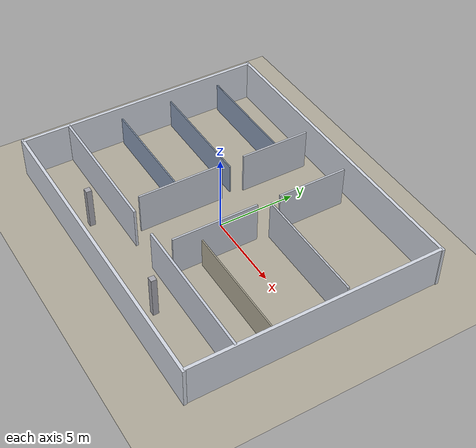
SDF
<sdf version="1.8">
 <world name="office">
  <physics name="1ms" type="ignored">
   <max_step_size>0.001</max_step_size>
   <real_time_factor>1.0</real_time_factor>
  </physics>
  <plugin filename="gz-sim-physics-system" name="gz::sim::systems::Physics"/>
  <plugin filename="gz-sim-user-commands-system" name="gz::sim::systems::UserCommands"/>
  <plugin filename="gz-sim-scene-broadcaster-system" name="gz::sim::systems::SceneBroadcaster"/>
  <plugin filename="gz-sim-contact-system" name="gz::sim::systems::Contact"/>
  <plugin filename="gz-sim-sensors-system" name="gz::sim::systems::Sensors">
   <render_engine>ogre2</render_engine>
  </plugin>
  <light type="directional" name="sun">
   <pose>0 0 12 0 0 0</pose>
   <diffuse>0.85 0.85 0.8 1</diffuse>
   <specular>0.25 0.25 0.25 1</specular>
   <direction>-0.35 0.15 -0.9</direction>
  </light>
  <light type="point" name="lobby_light">
   <pose>0 -8 2.8 0 0 0</pose>
   <diffuse>0.9 0.9 0.85 1</diffuse>
   <attenuation>
    <range>12</range>
    <constant>0.4</constant>
    <linear>0.04</linear>
    <quadratic>0.01</quadratic>
   </attenuation>
  </light>
  <light type="point" name="corridor_light">
   <pose>0 0 2.8 0 0 0</pose>
   <diffuse>0.85 0.85 0.9 1</diffuse>
   <attenuation>
    <range>10</range>
    <constant>0.4</constant>
    <linear>0.05</linear>
    <quadratic>0.01</quadratic>
   </attenuation>
  </light>
  <light type="point" name="meet_light">
   <pose>5 4 2.8 0 0 0</pose>
   <diffuse>0.9 0.88 0.8 1</diffuse>
   <attenuation>
    <range>8</range>
    <constant>0.4</constant>
    <linear>0.05</linear>
    <quadratic>0.01</quadratic>
   </attenuation>
  </light>
  <gravity>0 0 -9.8</gravity>
  <magnetic_field>6e-06 2.3e-05 -4.2e-05</magnetic_field>
  <atmosphere type="adiabatic"/>
  <scene>
   <ambient>0.42 0.42 0.45 1</ambient>
   <background>0.7 0.74 0.78 1</background>
   <shadows>true</shadows>
  </scene>
  <model name="ground_plane">
   <static>true</static>
   <link name="link">
    <collision name="collision">
     <geometry><plane><normal>0 0 1</normal><size>60 60</size></plane></geometry>
     <surface><friction><ode><mu>1</mu><mu2>1</mu2></ode></friction></surface>
    </collision>
    <visual name="visual">
     <geometry><plane><normal>0 0 1</normal><size>60 60</size></plane></geometry>
     <material><ambient>0.68 0.66 0.60 1</ambient><diffuse>0.68 0.66 0.60 1</diffuse></material>
    </visual>
   </link>
  </model>
  <model name="outer_s">
   <static>true</static>
   <pose>0 -8 1.35 0 0 0</pose>
   <link name="link">
    <collision name="c"><geometry><box><size>20.3 0.2 2.7</size></box></geometry></collision>
    <visual name="v">
     <geometry><box><size>20.3 0.2 2.7</size></box></geometry>
     <material><ambient>0.82 0.84 0.88 1</ambient><diffuse>0.82 0.84 0.88 1</diffuse></material>
    </visual>
   </link>
  </model>
  <model name="outer_n">
   <static>true</static>
   <pose>0 8 1.35 0 0 0</pose>
   <link name="link">
    <collision name="c"><geometry><box><size>20.3 0.2 2.7</size></box></geometry></collision>
    <visual name="v">
     <geometry><box><size>20.3 0.2 2.7</size></box></geometry>
     <material><ambient>0.82 0.84 0.88 1</ambient><diffuse>0.82 0.84 0.88 1</diffuse></material>
    </visual>
   </link>
  </model>
  <model name="outer_w">
   <static>true</static>
   <pose>-10 0 1.35 0 0 0</pose>
   <link name="link">
    <collision name="c"><geometry><box><size>0.2 16.0 2.7</size></box></geometry></collision>
    <visual name="v">
     <geometry><box><size>0.2 16.0 2.7</size></box></geometry>
     <material><ambient>0.82 0.84 0.88 1</ambient><diffuse>0.82 0.84 0.88 1</diffuse></material>
    </visual>
   </link>
  </model>
  <model name="outer_e">
   <static>true</static>
   <pose>10 0 1.35 0 0 0</pose>
   <link name="link">
    <collision name="c"><geometry><box><size>0.2 16.0 2.7</size></box></geometry></collision>
    <visual name="v">
     <geometry><box><size>0.2 16.0 2.7</size></box></geometry>
     <material><ambient>0.82 0.84 0.88 1</ambient><diffuse>0.82 0.84 0.88 1</diffuse></material>
    </visual>
   </link>
  </model>
  <model name="lobby_wall_l">
   <static>true</static>
   <pose>-5.5 -5 1.35 0 0 0</pose>
   <link name="link">
    <collision name="c"><geometry><box><size>9.0 0.15 2.7</size></box></geometry></collision>
    <visual name="v">
     <geometry><box><size>9.0 0.15 2.7</size></box></geometry>
     <material><ambient>0.78 0.80 0.85 1</ambient><diffuse>0.78 0.80 0.85 1</diffuse></material>
    </visual>
   </link>
  </model>
  <model name="lobby_wall_r">
   <static>true</static>
   <pose>5.5 -5 1.35 0 0 0</pose>
   <link name="link">
    <collision name="c"><geometry><box><size>9.0 0.15 2.7</size></box></geometry></collision>
    <visual name="v">
     <geometry><box><size>9.0 0.15 2.7</size></box></geometry>
     <material><ambient>0.78 0.80 0.85 1</ambient><diffuse>0.78 0.80 0.85 1</diffuse></material>
    </visual>
   </link>
  </model>
  <model name="corr_w_low">
   <static>true</static>
   <pose>-2 -1.5 1.35 0 0 0</pose>
   <link name="link">
    <collision name="c"><geometry><box><size>0.12 5.5 2.7</size></box></geometry></collision>
    <visual name="v">
     <geometry><box><size>0.12 5.5 2.7</size></box></geometry>
     <material><ambient>0.76 0.78 0.82 1</ambient><diffuse>0.76 0.78 0.82 1</diffuse></material>
    </visual>
   </link>
  </model>
  <model name="corr_w_high">
   <static>true</static>
   <pose>-2 5.0 1.35 0 0 0</pose>
   <link name="link">
    <collision name="c"><geometry><box><size>0.12 4.5 2.7</size></box></geometry></collision>
    <visual name="v">
     <geometry><box><size>0.12 4.5 2.7</size></box></geometry>
     <material><ambient>0.76 0.78 0.82 1</ambient><diffuse>0.76 0.78 0.82 1</diffuse></material>
    </visual>
   </link>
  </model>
  <model name="corr_e_low">
   <static>true</static>
   <pose>2 -1.5 1.35 0 0 0</pose>
   <link name="link">
    <collision name="c"><geometry><box><size>0.12 5.5 2.7</size></box></geometry></collision>
    <visual name="v">
     <geometry><box><size>0.12 5.5 2.7</size></box></geometry>
     <material><ambient>0.76 0.78 0.82 1</ambient><diffuse>0.76 0.78 0.82 1</diffuse></material>
    </visual>
   </link>
  </model>
  <model name="corr_e_high">
   <static>true</static>
   <pose>2 5.0 1.35 0 0 0</pose>
   <link name="link">
    <collision name="c"><geometry><box><size>0.12 4.5 2.7</size></box></geometry></collision>
    <visual name="v">
     <geometry><box><size>0.12 4.5 2.7</size></box></geometry>
     <material><ambient>0.76 0.78 0.82 1</ambient><diffuse>0.76 0.78 0.82 1</diffuse></material>
    </visual>
   </link>
  </model>
  <model name="cube_sep_1">
   <static>true</static>
   <pose>-6 -1.5 1.0 0 0 0</pose>
   <link name="link">
    <collision name="c"><geometry><box><size>7.5 0.08 2.0</size></box></geometry></collision>
    <visual name="v">
     <geometry><box><size>7.5 0.08 2.0</size></box></geometry>
     <material><ambient>0.55 0.62 0.72 1</ambient><diffuse>0.55 0.62 0.72 1</diffuse></material>
    </visual>
   </link>
  </model>
  <model name="cube_sep_2">
   <static>true</static>
   <pose>-6 2.0 1.0 0 0 0</pose>
   <link name="link">
    <collision name="c"><geometry><box><size>7.5 0.08 2.0</size></box></geometry></collision>
    <visual name="v">
     <geometry><box><size>7.5 0.08 2.0</size></box></geometry>
     <material><ambient>0.55 0.62 0.72 1</ambient><diffuse>0.55 0.62 0.72 1</diffuse></material>
    </visual>
   </link>
  </model>
  <model name="cube_sep_3">
   <static>true</static>
   <pose>-6 5.5 1.0 0 0 0</pose>
   <link name="link">
    <collision name="c"><geometry><box><size>7.5 0.08 2.0</size></box></geometry></collision>
    <visual name="v">
     <geometry><box><size>7.5 0.08 2.0</size></box></geometry>
     <material><ambient>0.55 0.62 0.72 1</ambient><diffuse>0.55 0.62 0.72 1</diffuse></material>
    </visual>
   </link>
  </model>
  <model name="meet_s">
   <static>true</static>
   <pose>6 2 1.35 0 0 0</pose>
   <link name="link">
    <collision name="c"><geometry><box><size>7.5 0.12 2.7</size></box></geometry></collision>
    <visual name="v">
     <geometry><box><size>7.5 0.12 2.7</size></box></geometry>
     <material><ambient>0.74 0.76 0.80 1</ambient><diffuse>0.74 0.76 0.80 1</diffuse></material>
    </visual>
   </link>
  </model>
  <model name="break_wall">
   <static>true</static>
   <pose>6 -2.5 1.0 0 0 0</pose>
   <link name="link">
    <collision name="c"><geometry><box><size>7.5 0.08 2.0</size></box></geometry></collision>
    <visual name="v">
     <geometry><box><size>7.5 0.08 2.0</size></box></geometry>
     <material><ambient>0.70 0.68 0.60 1</ambient><diffuse>0.70 0.68 0.60 1</diffuse></material>
    </visual>
   </link>
  </model>
  <model name="pillar_1">
   <static>true</static>
   <pose>-4 -6.5 1.35 0 0 0</pose>
   <link name="link">
    <collision name="c"><geometry><box><size>0.35 0.35 2.7</size></box></geometry></collision>
    <visual name="v">
     <geometry><box><size>0.35 0.35 2.7</size></box></geometry>
     <material><ambient>0.65 0.65 0.68 1</ambient><diffuse>0.65 0.65 0.68 1</diffuse></material>
    </visual>
   </link>
  </model>
  <model name="pillar_2">
   <static>true</static>
   <pose>4 -6.5 1.35 0 0 0</pose>
   <link name="link">
    <collision name="c"><geometry><box><size>0.35 0.35 2.7</size></box></geometry></collision>
    <visual name="v">
     <geometry><box><size>0.35 0.35 2.7</size></box></geometry>
     <material><ambient>0.65 0.65 0.68 1</ambient><diffuse>0.65 0.65 0.68 1</diffuse></material>
    </visual>
   </link>
  </model>
 </world>
</sdf>
